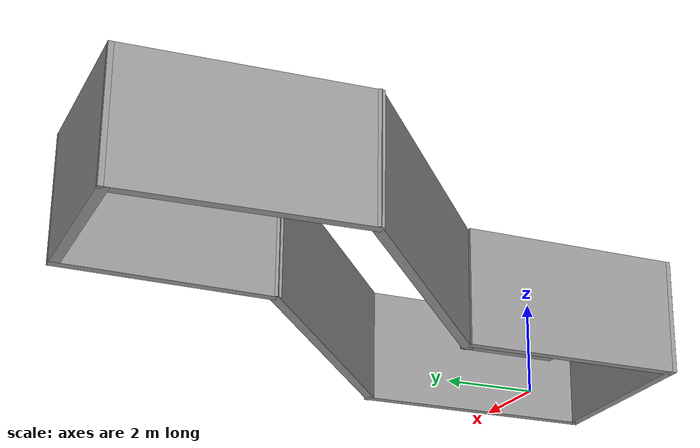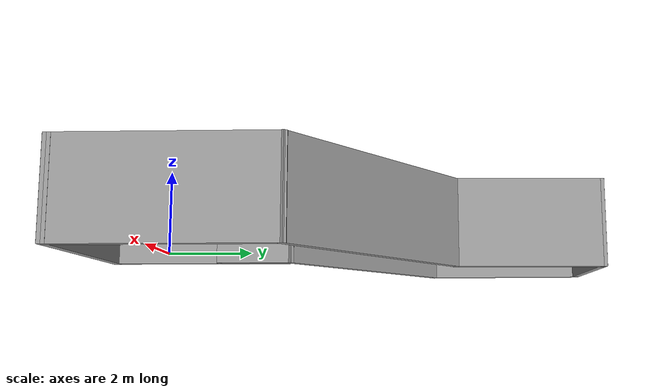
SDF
<?xml version='1.0'?>
<sdf version='1.4'>
  <model name='bended_corridor_2'>
    <link name='Wall_0'>
      <collision name='Wall_0_Collision'>
        <geometry>
          <box>
            <size>2.05631 0.2 2.5</size>
          </box>
        </geometry>
        <pose>0 0 1.25 0 -0 0</pose>
      </collision>
      <visual name='Wall_0_Visual'>
        <pose>0 0 1.25 0 -0 0</pose>
        <geometry>
          <box>
            <size>2.05631 0.2 2.5</size>
          </box>
        </geometry>
        <material>
          <script>
            <uri>file://media/materials/scripts/gazebo.material</uri>
            <name>Gazebo/Grey</name>
          </script>
        </material>
      </visual>
      <velocity_decay>
        <linear>0</linear>
        <angular>0</angular>
      </velocity_decay>
      <pose>-2.23608 1.72991 0 0 -0 1.5708</pose>
    </link>
    <link name='Wall_1'>
      <collision name='Wall_1_Collision'>
        <geometry>
          <box>
            <size>6.74131 0.2 2.5</size>
          </box>
        </geometry>
        <pose>0 0 1.25 0 -0 0</pose>
      </collision>
      <visual name='Wall_1_Visual'>
        <pose>0 0 1.25 0 -0 0</pose>
        <geometry>
          <box>
            <size>6.74131 0.2 2.5</size>
          </box>
        </geometry>
        <material>
          <script>
            <uri>file://media/materials/scripts/gazebo.material</uri>
            <name>Gazebo/Grey</name>
          </script>
        </material>
      </visual>
      <velocity_decay>
        <linear>0</linear>
        <angular>0</angular>
      </velocity_decay>
      <pose>-4.76671 4.73003 0 0 -0 2.45552</pose>
    </link>
    <link name='Wall_2'>
      <collision name='Wall_2_Collision'>
        <geometry>
          <box>
            <size>4.68579 0.2 2.5</size>
          </box>
        </geometry>
        <pose>0 0 1.25 0 -0 0</pose>
      </collision>
      <visual name='Wall_2_Visual'>
        <pose>0 0 1.25 0 -0 0</pose>
        <geometry>
          <box>
            <size>4.68579 0.2 2.5</size>
          </box>
        </geometry>
        <material>
          <script>
            <uri>file://media/materials/scripts/gazebo.material</uri>
            <name>Gazebo/Grey</name>
          </script>
        </material>
      </visual>
      <velocity_decay>
        <linear>0</linear>
        <angular>0</angular>
      </velocity_decay>
      <pose>-7.19181 9.04242 0 0 -0 1.52372</pose>
    </link>
    <link name='Wall_3'>
      <collision name='Wall_3_Collision'>
        <geometry>
          <box>
            <size>3.71858 0.2 2.5</size>
          </box>
        </geometry>
        <pose>0 0 1.25 0 -0 0</pose>
      </collision>
      <visual name='Wall_3_Visual'>
        <pose>0 0 1.25 0 -0 0</pose>
        <geometry>
          <box>
            <size>3.71858 0.2 2.5</size>
          </box>
        </geometry>
        <material>
          <script>
            <uri>file://media/materials/scripts/gazebo.material</uri>
            <name>Gazebo/Grey</name>
          </script>
        </material>
      </visual>
      <velocity_decay>
        <linear>0</linear>
        <angular>0</angular>
      </velocity_decay>
      <pose>-5.32698 11.2828 0 0 -0 0</pose>
    </link>
    <link name='Wall_4'>
      <collision name='Wall_4_Collision'>
        <geometry>
          <box>
            <size>4.2821 0.2 2.5</size>
          </box>
        </geometry>
        <pose>0 0 1.25 0 -0 0</pose>
      </collision>
      <visual name='Wall_4_Visual'>
        <pose>0 0 1.25 0 -0 0</pose>
        <geometry>
          <box>
            <size>4.2821 0.2 2.5</size>
          </box>
        </geometry>
        <material>
          <script>
            <uri>file://media/materials/scripts/gazebo.material</uri>
            <name>Gazebo/Grey</name>
          </script>
        </material>
      </visual>
      <velocity_decay>
        <linear>0</linear>
        <angular>0</angular>
      </velocity_decay>
      <pose>-3.51493 9.24246 0 0 0 -1.54494</pose>
    </link>
    <link name='Wall_5'>
      <collision name='Wall_5_Collision'>
        <geometry>
          <box>
            <size>7.09584 0.2 2.5</size>
          </box>
        </geometry>
        <pose>0 0 1.25 0 -0 0</pose>
      </collision>
      <visual name='Wall_5_Visual'>
        <pose>0 0 1.25 0 -0 0</pose>
        <geometry>
          <box>
            <size>7.09584 0.2 2.5</size>
          </box>
        </geometry>
        <material>
          <script>
            <uri>file://media/materials/scripts/gazebo.material</uri>
            <name>Gazebo/Grey</name>
          </script>
        </material>
      </visual>
      <velocity_decay>
        <linear>0</linear>
        <angular>0</angular>
      </velocity_decay>
      <pose>-0.735804 5.09137 0 0 0 -0.658806</pose>
    </link>
    <link name='Wall_6'>
      <collision name='Wall_6_Collision'>
        <geometry>
          <box>
            <size>5.45835 0.2 2.5</size>
          </box>
        </geometry>
        <pose>0 0 1.25 0 -0 0</pose>
      </collision>
      <visual name='Wall_6_Visual'>
        <pose>0 0 1.25 0 -0 0</pose>
        <geometry>
          <box>
            <size>5.45835 0.2 2.5</size>
          </box>
        </geometry>
        <material>
          <script>
            <uri>file://media/materials/scripts/gazebo.material</uri>
            <name>Gazebo/Grey</name>
          </script>
        </material>
      </visual>
      <velocity_decay>
        <linear>0</linear>
        <angular>0</angular>
      </velocity_decay>
      <pose>1.99055 0.351469 0 0 0 -1.5708</pose>
    </link>
    <link name='Wall_7'>
      <collision name='Wall_7_Collision'>
        <geometry>
          <box>
            <size>4.60334 0.2 2.5</size>
          </box>
        </geometry>
        <pose>0 0 1.25 0 -0 0</pose>
      </collision>
      <visual name='Wall_7_Visual'>
        <pose>0 0 1.25 0 -0 0</pose>
        <geometry>
          <box>
            <size>4.60334 0.2 2.5</size>
          </box>
        </geometry>
        <material>
          <script>
            <uri>file://media/materials/scripts/gazebo.material</uri>
            <name>Gazebo/Grey</name>
          </script>
        </material>
      </visual>
      <velocity_decay>
        <linear>0</linear>
        <angular>0</angular>
      </velocity_decay>
      <pose>-0.208736 -2.17527 0 0 -0 3.09505</pose>
    </link>
    <link name='Wall_8'>
      <collision name='Wall_8_Collision'>
        <geometry>
          <box>
            <size>4.85072 0.2 2.5</size>
          </box>
        </geometry>
        <pose>0 0 1.25 0 -0 0</pose>
      </collision>
      <visual name='Wall_8_Visual'>
        <pose>0 0 1.25 0 -0 0</pose>
        <geometry>
          <box>
            <size>4.85072 0.2 2.5</size>
          </box>
        </geometry>
        <material>
          <script>
            <uri>file://media/materials/scripts/gazebo.material</uri>
            <name>Gazebo/Grey</name>
          </script>
        </material>
      </visual>
      <velocity_decay>
        <linear>0</linear>
        <angular>0</angular>
      </velocity_decay>
      <pose>-2.40802 0.252529 0 0 -0 1.5708</pose>
    </link>
    <static>1</static>
  </model>
</sdf>
